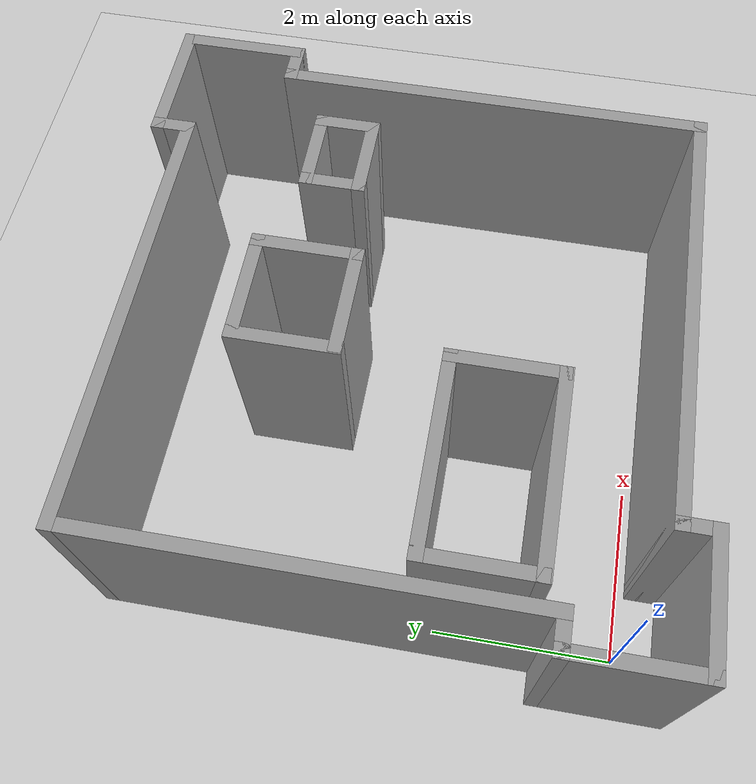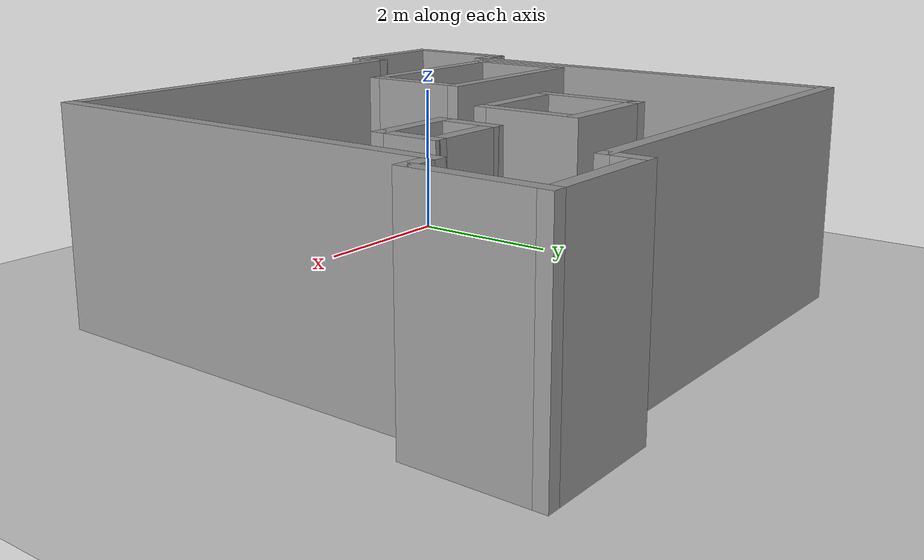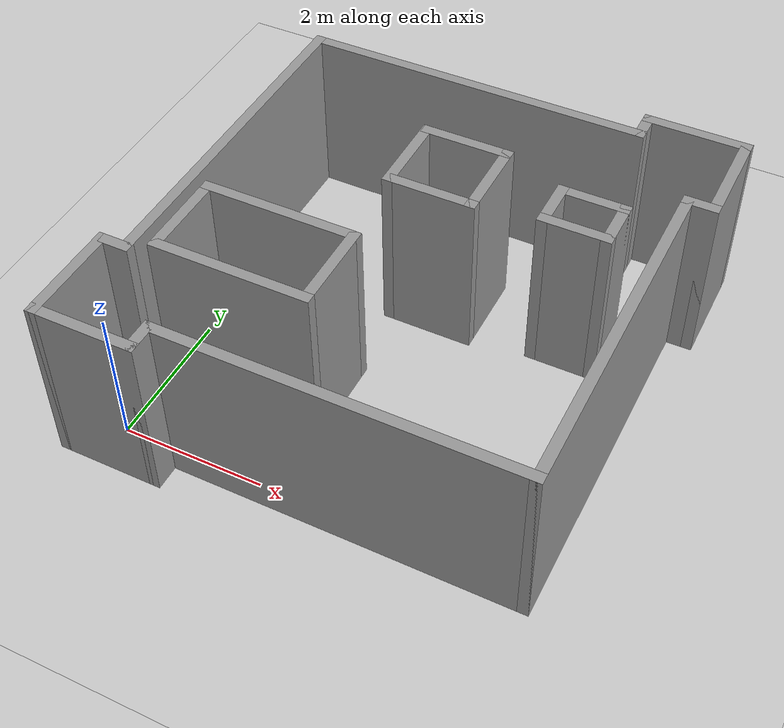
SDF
<sdf version="1.7">
 <world name="default">
  <light name="sun" type="directional">
   <pose>0 0 10 0 -0 0</pose>
   <diffuse>0.8 0.8 0.8 1</diffuse>
   <specular>0.2 0.2 0.2 1</specular>
   <attenuation>
    <range>1000</range>
    <constant>0.9</constant>
    <linear>0.01</linear>
    <quadratic>0.001</quadratic>
   </attenuation>
   <direction>-0.5 0.1 -0.9</direction>
   <spot><inner_angle>0</inner_angle><outer_angle>0</outer_angle><falloff>0</falloff></spot>
  </light>
  <model name="ground_plane">
   <static>1</static>
   <link name="link">
    <collision name="collision">
     <geometry><plane><normal>0 0 1</normal><size>100 100</size></plane></geometry>
     <surface><friction><ode><mu>100</mu><mu2>50</mu2></ode></friction></surface>
    </collision>
    <visual name="visual">
     <cast_shadows>0</cast_shadows>
     <geometry><plane><normal>0 0 1</normal><size>100 100</size></plane></geometry>
     <material>
      <script><uri>file://media/materials/scripts/gazebo.material</uri><name>Gazebo/Grey</name></script>
     </material>
    </visual>
   </link>
  </model>
  <gravity>0 0 -9.8</gravity>
  <magnetic_field>6e-06 2.3e-05 -4.2e-05</magnetic_field>
  <atmosphere type="adiabatic"/>
  <physics type="ode">
   <max_step_size>0.001</max_step_size>
   <real_time_factor>1</real_time_factor>
   <real_time_update_rate>1000</real_time_update_rate>
  </physics>
  <scene><ambient>0.4 0.4 0.4 1</ambient><background>0.7 0.7 0.7 1</background><shadows>1</shadows></scene>
  <audio><device>default</device></audio>
  <spherical_coordinates>
   <surface_model>EARTH_WGS84</surface_model>
   <latitude_deg>0</latitude_deg>
   <longitude_deg>0</longitude_deg>
   <elevation>0</elevation>
   <heading_deg>0</heading_deg>
  </spherical_coordinates>
  <model name="wall_simple">
   <pose>2.75 2.75 0 0 -0 0</pose>
   <link name="Wall_10">
    <collision name="Wall_10_Collision">
     <geometry><box><size>0.5 0.15 2.5</size></box></geometry>
     <pose>0 0 1.25 0 -0 0</pose>
    </collision>
    <visual name="Wall_10_Visual">
     <pose>0 0 1.25 0 -0 0</pose>
     <geometry><box><size>0.5 0.15 2.5</size></box></geometry>
     <material>
      <script><uri>file://media/materials/scripts/gazebo.material</uri><name>Gazebo/Grey</name></script>
      <ambient>1 1 1 1</ambient>
     </material>
     <meta><layer>0</layer></meta>
    </visual>
    <pose>-3.1 -1.925 0 0 -0 3.14159</pose>
   </link>
   <link name="Wall_11">
    <collision name="Wall_11_Collision">
     <geometry><box><size>1.5 0.15 2.5</size></box></geometry>
     <pose>0 0 1.25 0 -0 0</pose>
    </collision>
    <visual name="Wall_11_Visual">
     <pose>0 0 1.25 0 -0 0</pose>
     <geometry><box><size>1.5 0.15 2.5</size></box></geometry>
     <material>
      <script><uri>file://media/materials/scripts/gazebo.material</uri><name>Gazebo/Grey</name></script>
      <ambient>1 1 1 1</ambient>
     </material>
     <meta><layer>0</layer></meta>
    </visual>
    <pose>-3.275 -2.6 0 0 -0 -1.5708</pose>
   </link>
   <link name="Wall_12">
    <collision name="Wall_12_Collision">
     <geometry><box><size>1.5 0.15 2.5</size></box></geometry>
     <pose>0 0 1.25 0 -0 0</pose>
    </collision>
    <visual name="Wall_12_Visual">
     <pose>0 0 1.25 0 -0 0</pose>
     <geometry><box><size>1.5 0.15 2.5</size></box></geometry>
     <material>
      <script><uri>file://media/materials/scripts/gazebo.material</uri><name>Gazebo/Grey</name></script>
      <ambient>1 1 1 1</ambient>
     </material>
     <meta><layer>0</layer></meta>
    </visual>
    <pose>-2.6 -3.275 0 0 -0 0</pose>
   </link>
   <link name="Wall_13">
    <collision name="Wall_13_Collision">
     <geometry><box><size>0.5 0.15 2.5</size></box></geometry>
     <pose>0 0 1.25 0 -0 0</pose>
    </collision>
    <visual name="Wall_13_Visual">
     <pose>0 0 1.25 0 -0 0</pose>
     <geometry><box><size>0.5 0.15 2.5</size></box></geometry>
     <material>
      <script><uri>file://media/materials/scripts/gazebo.material</uri><name>Gazebo/Grey</name></script>
      <ambient>1 1 1 1</ambient>
     </material>
     <meta><layer>0</layer></meta>
    </visual>
    <pose>-1.925 -3.1 0 0 -0 1.5708</pose>
   </link>
   <link name="Wall_14">
    <collision name="Wall_14_Collision">
     <geometry><box><size>5 0.15 2.5</size></box></geometry>
     <pose>0 0 1.25 0 -0 0</pose>
    </collision>
    <visual name="Wall_14_Visual">
     <pose>0 0 1.25 0 -0 0</pose>
     <geometry><box><size>5 0.15 2.5</size></box></geometry>
     <material>
      <script><uri>file://media/materials/scripts/gazebo.material</uri><name>Gazebo/Grey</name></script>
      <ambient>1 1 1 1</ambient>
     </material>
     <meta><layer>0</layer></meta>
    </visual>
    <pose>0.5 -2.925 0 0 -0 0</pose>
   </link>
   <link name="Wall_15">
    <collision name="Wall_15_Collision">
     <geometry><box><size>5 0.15 2.5</size></box></geometry>
     <pose>0 0 1.25 0 -0 0</pose>
    </collision>
    <visual name="Wall_15_Visual">
     <pose>0 0 1.25 0 -0 0</pose>
     <geometry><box><size>5 0.15 2.5</size></box></geometry>
     <material>
      <script><uri>file://media/materials/scripts/gazebo.material</uri><name>Gazebo/Grey</name></script>
      <ambient>1 1 1 1</ambient>
     </material>
     <meta><layer>0</layer></meta>
    </visual>
    <pose>2.925 -0.5 0 0 -0 1.5708</pose>
   </link>
   <link name="Wall_16">
    <collision name="Wall_16_Collision">
     <geometry><box><size>0.5 0.15 2.5</size></box></geometry>
     <pose>0 0 1.25 0 -0 0</pose>
    </collision>
    <visual name="Wall_16_Visual">
     <pose>0 0 1.25 0 -0 0</pose>
     <geometry><box><size>0.5 0.15 2.5</size></box></geometry>
     <material>
      <script><uri>file://media/materials/scripts/gazebo.material</uri><name>Gazebo/Grey</name></script>
      <ambient>1 1 1 1</ambient>
     </material>
     <meta><layer>0</layer></meta>
    </visual>
    <pose>3.1 1.925 0 0 -0 0</pose>
   </link>
   <link name="Wall_17">
    <collision name="Wall_17_Collision">
     <geometry><box><size>1.5 0.15 2.5</size></box></geometry>
     <pose>0 0 1.25 0 -0 0</pose>
    </collision>
    <visual name="Wall_17_Visual">
     <pose>0 0 1.25 0 -0 0</pose>
     <geometry><box><size>1.5 0.15 2.5</size></box></geometry>
     <material>
      <script><uri>file://media/materials/scripts/gazebo.material</uri><name>Gazebo/Grey</name></script>
      <ambient>1 1 1 1</ambient>
     </material>
     <meta><layer>0</layer></meta>
    </visual>
    <pose>3.275 2.6 0 0 -0 1.5708</pose>
   </link>
   <link name="Wall_18">
    <collision name="Wall_18_Collision">
     <geometry><box><size>1.5 0.15 2.5</size></box></geometry>
     <pose>0 0 1.25 0 -0 0</pose>
    </collision>
    <visual name="Wall_18_Visual">
     <pose>0 0 1.25 0 -0 0</pose>
     <geometry><box><size>1.5 0.15 2.5</size></box></geometry>
     <material>
      <script><uri>file://media/materials/scripts/gazebo.material</uri><name>Gazebo/Grey</name></script>
      <ambient>1 1 1 1</ambient>
     </material>
     <meta><layer>0</layer></meta>
    </visual>
    <pose>2.6 3.275 0 0 -0 3.14159</pose>
   </link>
   <link name="Wall_19">
    <collision name="Wall_19_Collision">
     <geometry><box><size>0.5 0.15 2.5</size></box></geometry>
     <pose>0 0 1.25 0 -0 0</pose>
    </collision>
    <visual name="Wall_19_Visual">
     <pose>0 0 1.25 0 -0 0</pose>
     <geometry><box><size>0.5 0.15 2.5</size></box></geometry>
     <material>
      <script><uri>file://media/materials/scripts/gazebo.material</uri><name>Gazebo/Grey</name></script>
      <ambient>1 1 1 1</ambient>
     </material>
     <meta><layer>0</layer></meta>
    </visual>
    <pose>1.925 3.1 0 0 -0 -1.5708</pose>
   </link>
   <link name="Wall_20">
    <collision name="Wall_20_Collision">
     <geometry><box><size>5 0.15 2.5</size></box></geometry>
     <pose>0 0 1.25 0 -0 0</pose>
    </collision>
    <visual name="Wall_20_Visual">
     <pose>0 0 1.25 0 -0 0</pose>
     <geometry><box><size>5 0.15 2.5</size></box></geometry>
     <material>
      <script><uri>file://media/materials/scripts/gazebo.material</uri><name>Gazebo/Grey</name></script>
      <ambient>1 1 1 1</ambient>
     </material>
     <meta><layer>0</layer></meta>
    </visual>
    <pose>-0.5 2.925 0 0 -0 3.14159</pose>
   </link>
   <link name="Wall_21">
    <collision name="Wall_21_Collision">
     <geometry><box><size>5 0.15 2.5</size></box></geometry>
     <pose>0 0 1.25 0 -0 0</pose>
    </collision>
    <visual name="Wall_21_Visual">
     <pose>0 0 1.25 0 -0 0</pose>
     <geometry><box><size>5 0.15 2.5</size></box></geometry>
     <material>
      <script><uri>file://media/materials/scripts/gazebo.material</uri><name>Gazebo/Grey</name></script>
      <ambient>1 1 1 1</ambient>
     </material>
     <meta><layer>0</layer></meta>
    </visual>
    <pose>-2.925 0.5 0 0 -0 -1.5708</pose>
   </link>
   <link name="Wall_26">
    <collision name="Wall_26_Collision">
     <geometry><box><size>2.25 0.15 2.5</size></box></geometry>
     <pose>0 0 1.25 0 -0 0</pose>
    </collision>
    <visual name="Wall_26_Visual">
     <pose>0 0 1.25 0 -0 0</pose>
     <geometry><box><size>2.25 0.15 2.5</size></box></geometry>
     <material>
      <script><uri>file://media/materials/scripts/gazebo.material</uri><name>Gazebo/Grey</name></script>
      <ambient>1 1 1 1</ambient>
     </material>
     <meta><layer>0</layer></meta>
    </visual>
    <pose>-1.58167 -1.70877 0 0 -0 3.14159</pose>
   </link>
   <link name="Wall_32">
    <collision name="Wall_32_Collision">
     <geometry><box><size>1 0.15 2.5</size></box></geometry>
     <pose>0 0 1.25 0 -0 0</pose>
    </collision>
    <visual name="Wall_32_Visual">
     <pose>0 0 1.25 0 -0 0</pose>
     <geometry><box><size>1 0.15 2.5</size></box></geometry>
     <material>
      <script><uri>file://media/materials/scripts/gazebo.material</uri><name>Gazebo/Grey</name></script>
      <ambient>1 1 1 1</ambient>
     </material>
     <meta><layer>0</layer></meta>
    </visual>
    <pose>1.85267 0.812423 0 0 -0 3.14159</pose>
   </link>
   <link name="Wall_41">
    <collision name="Wall_41_Collision">
     <geometry><box><size>0.75 0.15 2.5</size></box></geometry>
     <pose>0 0 1.25 0 -0 0</pose>
    </collision>
    <visual name="Wall_41_Visual">
     <pose>0 0 1.25 0 -0 0</pose>
     <geometry><box><size>0.75 0.15 2.5</size></box></geometry>
     <material>
      <script><uri>file://media/materials/scripts/gazebo.material</uri><name>Gazebo/Grey</name></script>
      <ambient>1 1 1 1</ambient>
     </material>
     <meta><layer>0</layer></meta>
    </visual>
    <pose>1.42767 1.11242 0 0 -0 1.5708</pose>
   </link>
   <link name="Wall_42">
    <collision name="Wall_42_Collision">
     <geometry><box><size>1 0.15 2.5</size></box></geometry>
     <pose>0 0 1.25 0 -0 0</pose>
    </collision>
    <visual name="Wall_42_Visual">
     <pose>0 0 1.25 0 -0 0</pose>
     <geometry><box><size>1 0.15 2.5</size></box></geometry>
     <material>
      <script><uri>file://media/materials/scripts/gazebo.material</uri><name>Gazebo/Grey</name></script>
      <ambient>1 1 1 1</ambient>
     </material>
     <meta><layer>0</layer></meta>
    </visual>
    <pose>1.85267 1.41242 0 0 -0 0</pose>
   </link>
   <link name="Wall_43">
    <collision name="Wall_43_Collision">
     <geometry><box><size>0.75 0.15 2.5</size></box></geometry>
     <pose>0 0 1.25 0 -0 0</pose>
    </collision>
    <visual name="Wall_43_Visual">
     <pose>0 0 1.25 0 -0 0</pose>
     <geometry><box><size>0.75 0.15 2.5</size></box></geometry>
     <material>
      <script><uri>file://media/materials/scripts/gazebo.material</uri><name>Gazebo/Grey</name></script>
      <ambient>1 1 1 1</ambient>
     </material>
     <meta><layer>0</layer></meta>
    </visual>
    <pose>2.27767 1.11242 0 0 -0 -1.5708</pose>
   </link>
   <link name="Wall_46">
    <collision name="Wall_46_Collision">
     <geometry><box><size>1.29257 0.15 2.5</size></box></geometry>
     <pose>0 0 1.25 0 -0 0</pose>
    </collision>
    <visual name="Wall_46_Visual">
     <pose>0 0 1.25 0 -0 0</pose>
     <geometry><box><size>1.29257 0.15 2.5</size></box></geometry>
     <material>
      <script><uri>file://media/materials/scripts/gazebo.material</uri><name>Gazebo/Grey</name></script>
      <ambient>1 1 1 1</ambient>
     </material>
     <meta><layer>0</layer></meta>
    </visual>
    <pose>-0.054383 0.65097 0 0 -0 3.14159</pose>
   </link>
   <link name="Wall_47">
    <collision name="Wall_47_Collision">
     <geometry><box><size>1.25 0.15 2.5</size></box></geometry>
     <pose>0 0 1.25 0 -0 0</pose>
    </collision>
    <visual name="Wall_47_Visual">
     <pose>0 0 1.25 0 -0 0</pose>
     <geometry><box><size>1.25 0.15 2.5</size></box></geometry>
     <material>
      <script><uri>file://media/materials/scripts/gazebo.material</uri><name>Gazebo/Grey</name></script>
      <ambient>1 1 1 1</ambient>
     </material>
     <meta><layer>0</layer></meta>
    </visual>
    <pose>-0.640333 1.20097 0 0 -0 1.5708</pose>
   </link>
   <link name="Wall_48">
    <collision name="Wall_48_Collision">
     <geometry><box><size>1.29257 0.15 2.5</size></box></geometry>
     <pose>0 0 1.25 0 -0 0</pose>
    </collision>
    <visual name="Wall_48_Visual">
     <pose>0 0 1.25 0 -0 0</pose>
     <geometry><box><size>1.29257 0.15 2.5</size></box></geometry>
     <material>
      <script><uri>file://media/materials/scripts/gazebo.material</uri><name>Gazebo/Grey</name></script>
      <ambient>1 1 1 1</ambient>
     </material>
     <meta><layer>0</layer></meta>
    </visual>
    <pose>-0.054383 1.75097 0 0 -0 0</pose>
   </link>
   <link name="Wall_49">
    <collision name="Wall_49_Collision">
     <geometry><box><size>1.25 0.15 2.5</size></box></geometry>
     <pose>0 0 1.25 0 -0 0</pose>
    </collision>
    <visual name="Wall_49_Visual">
     <pose>0 0 1.25 0 -0 0</pose>
     <geometry><box><size>1.25 0.15 2.5</size></box></geometry>
     <material>
      <script><uri>file://media/materials/scripts/gazebo.material</uri><name>Gazebo/Grey</name></script>
      <ambient>1 1 1 1</ambient>
     </material>
     <meta><layer>0</layer></meta>
    </visual>
    <pose>0.516902 1.20097 0 0 -0 -1.5708</pose>
   </link>
   <link name="Wall_51">
    <collision name="Wall_51_Collision">
     <geometry><box><size>1.32474 0.15 2.5</size></box></geometry>
     <pose>0 0 1.25 0 -0 0</pose>
    </collision>
    <visual name="Wall_51_Visual">
     <pose>0 0 1.25 0 -0 0</pose>
     <geometry><box><size>1.32474 0.15 2.5</size></box></geometry>
     <material>
      <script><uri>file://media/materials/scripts/gazebo.material</uri><name>Gazebo/Grey</name></script>
      <ambient>1 1 1 1</ambient>
     </material>
     <meta><layer>0</layer></meta>
    </visual>
    <pose>-2.63167 -1.10674 0 0 -0 1.5708</pose>
   </link>
   <link name="Wall_52">
    <collision name="Wall_52_Collision">
     <geometry><box><size>2.25 0.15 2.5</size></box></geometry>
     <pose>0 0 1.25 0 -0 0</pose>
    </collision>
    <visual name="Wall_52_Visual">
     <pose>0 0 1.25 0 -0 0</pose>
     <geometry><box><size>2.25 0.15 2.5</size></box></geometry>
     <material>
      <script><uri>file://media/materials/scripts/gazebo.material</uri><name>Gazebo/Grey</name></script>
      <ambient>1 1 1 1</ambient>
     </material>
     <meta><layer>0</layer></meta>
    </visual>
    <pose>-1.58167 -0.519369 0 0 -0 0</pose>
   </link>
   <link name="Wall_53">
    <collision name="Wall_53_Collision">
     <geometry><box><size>1.32474 0.15 2.5</size></box></geometry>
     <pose>0 0 1.25 0 -0 0</pose>
    </collision>
    <visual name="Wall_53_Visual">
     <pose>0 0 1.25 0 -0 0</pose>
     <geometry><box><size>1.32474 0.15 2.5</size></box></geometry>
     <material>
      <script><uri>file://media/materials/scripts/gazebo.material</uri><name>Gazebo/Grey</name></script>
      <ambient>1 1 1 1</ambient>
     </material>
     <meta><layer>0</layer></meta>
    </visual>
    <pose>-0.531675 -1.10674 0 0 -0 -1.5708</pose>
   </link>
   <static>1</static>
  </model>
  <model name="target_cube">
   <link name="link">
    <inertial>
     <mass>0.0875</mass>
     <inertia>
      <ixx>3.646e-05</ixx>
      <ixy>0</ixy>
      <ixz>0</ixz>
      <iyy>3.646e-05</iyy>
      <iyz>0</iyz>
      <izz>3.646e-05</izz>
     </inertia>
    </inertial>
    <visual name="visual">
     <geometry><box><size>0.05 0.05 0.05</size></box></geometry>
     <material>
      <script><name>Gazebo/Grey</name><uri>file://media/materials/scripts/gazebo.material</uri></script>
      <shader type="pixel"><normal_map>__default__</normal_map></shader>
      <ambient>1 0 0 1</ambient>
      <diffuse>1 0 0 1</diffuse>
      <specular>1 0 0 1</specular>
      <emissive>1 0 0 1</emissive>
     </material>
    </visual>
    <collision name="collision">
     <geometry><box><size>0.05 0.05 0.05</size></box></geometry>
     <surface>
      <friction>
       <ode><mu>1</mu><mu2>1</mu2><fdir1>0 0 0</fdir1><slip1>0</slip1><slip2>0</slip2></ode>
       <torsional>
        <coefficient>1</coefficient>
        <patch_radius>0</patch_radius>
        <surface_radius>0</surface_radius>
        <use_patch_radius>1</use_patch_radius>
        <ode><slip>0</slip></ode>
       </torsional>
      </friction>
      <bounce><restitution_coefficient>0</restitution_coefficient><threshold>1e+06</threshold></bounce>
      <contact>
       <collide_without_contact>0</collide_without_contact>
       <collide_without_contact_bitmask>1</collide_without_contact_bitmask>
       <collide_bitmask>1</collide_bitmask>
       <ode>
        <soft_cfm>0</soft_cfm>
        <soft_erp>0.2</soft_erp>
        <kp>1e+13</kp>
        <kd>1</kd>
        <max_vel>0.01</max_vel>
        <min_depth>0</min_depth>
       </ode>
       <bullet>
        <split_impulse>1</split_impulse>
        <split_impulse_penetration_threshold>-0.01</split_impulse_penetration_threshold>
        <soft_cfm>0</soft_cfm>
        <soft_erp>0.2</soft_erp>
        <kp>1e+13</kp>
        <kd>1</kd>
       </bullet>
      </contact>
     </surface>
    </collision>
   </link>
   <static>0</static>
   <pose>0.018395 0.501984 0 0 -0 0</pose>
  </model>
  <plugin name="gazebo_link_attacher" filename="libgazebo_link_attacher.so"/>
 </world>
</sdf>
